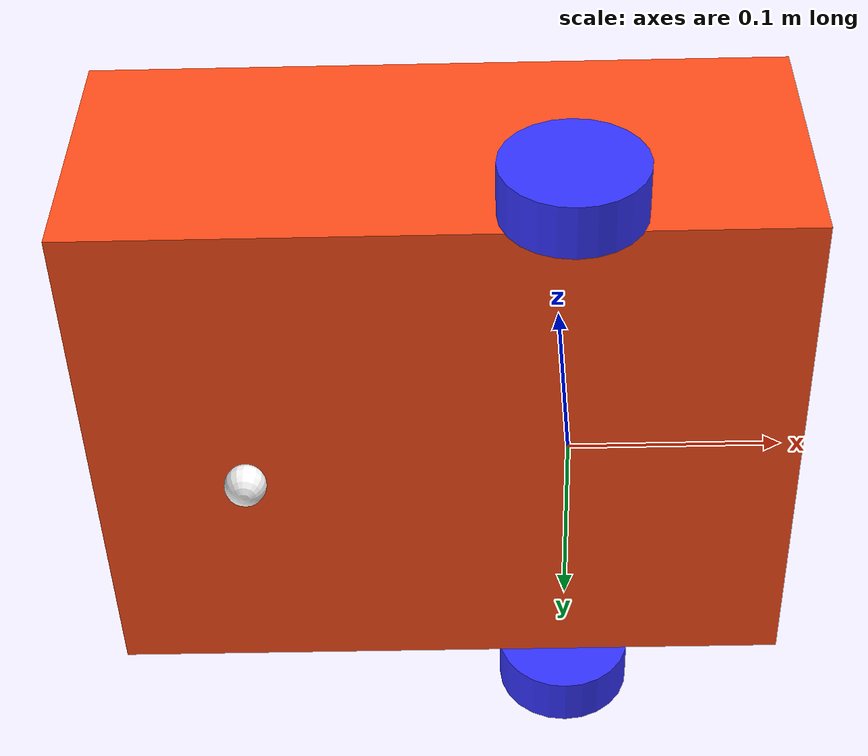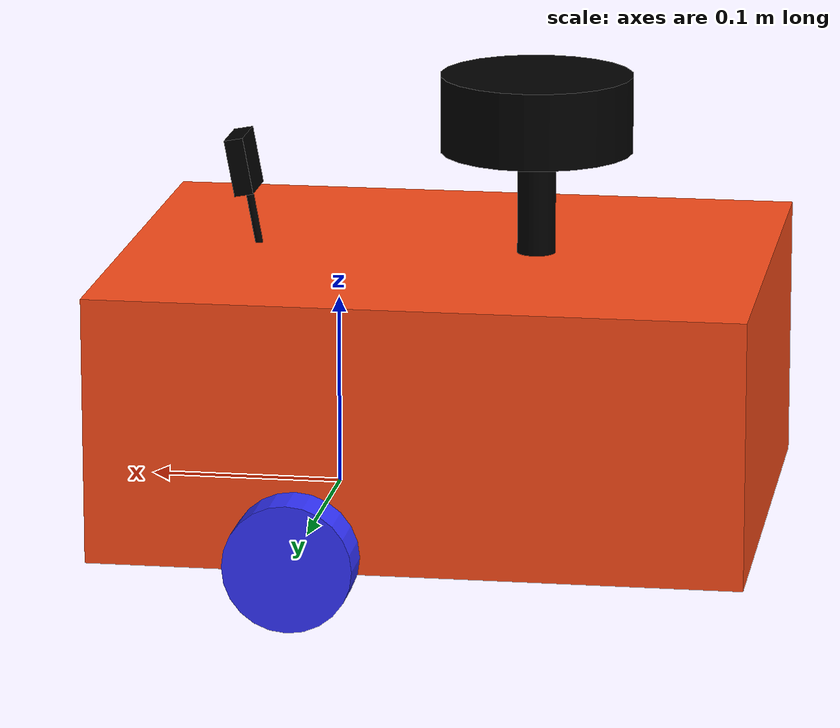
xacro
<?xml version="1.0"?>
<robot xmlns:xacro="http://www.ros.org/wiki/xacro"  name="robot">

    <xacro:arg name="sim_mode" default="false"/>

    <xacro:include filename="robot_core.xacro" />
    <xacro:include filename="gazebo_control.xacro"/>
    <xacro:include filename="inertial_macros.xacro"/>

    <xacro:include filename="lidar.xacro" />
    <xacro:include filename="camera.xacro" />
    <xacro:include filename="imu.xacro"/>

</robot>

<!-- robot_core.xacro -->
<robot xmlns:xacro="http://www.ros.org/wiki/xacro" >

    <xacro:include filename="inertial_macros.xacro"/>

    <xacro:property name="chassis_length" value="0.335"/>
    <xacro:property name="chassis_width" value="0.265"/>
    <xacro:property name="chassis_height" value="0.138"/>
    <xacro:property name="chassis_mass" value="1.0"/>
    <xacro:property name="wheel_radius" value="0.033"/>
    <xacro:property name="wheel_thickness" value="0.026"/>
    <xacro:property name="wheel_mass" value="0.05"/>
    <xacro:property name="wheel_offset_x" value="0.226"/>
    <xacro:property name="wheel_offset_y" value="0.1485"/>
    <xacro:property name="wheel_offset_z" value="0.01"/>
    <xacro:property name="caster_wheel_radius" value="0.01"/>
    <xacro:property name="caster_wheel_mass" value="0.01"/>
    <xacro:property name="caster_wheel_offset_x" value="0.075"/>
    <xacro:property name="caster_wheel_offset_z" value="${wheel_offset_z - wheel_radius + caster_wheel_radius}"/>

    <material name="white">
        <color rgba="1 1 1 1" />
    </material>

    <material name="orange">
        <color rgba="1 0.3 0.1 1"/>
    </material>

    <material name="blue">
        <color rgba="0.2 0.2 1 1"/>
    </material>

    <material name="black">
        <color rgba="0 0 0 1"/>
    </material>

    <material name="red">
        <color rgba="1 0 0 1"/>
    </material>

    <!-- BASE LINK -->

    <link name="base_link">
    </link>

    <link name="base_footprint">
    </link>

    <!-- BASE_FOOTPRINT LINK -->

    <joint name="base_footprint_joint" type="fixed">
        <parent link="base_link"/>
        <child link="base_footprint"/>
        <origin xyz="0 0 0.033" rpy="0 0 0"/>
    </joint>

    <!-- CHASSIS LINK -->

    <joint name="chassis_joint" type="fixed">
        <parent link="base_link"/>
        <child link="chassis"/>
        <origin xyz="${-wheel_offset_x} 0 ${-wheel_offset_z}"/>
    </joint>

    <link name="chassis">
        <visual>
            <origin xyz="${chassis_length/2} 0 ${chassis_height/2}"/>
            <geometry>
                <box size="${chassis_length} ${chassis_width} ${chassis_height}"/>
            </geometry>
            <material name="orange"/>
        </visual>
        <collision>
            <origin xyz="${chassis_length/2} 0 ${chassis_height/2}"/>
            <geometry>
                <box size="${chassis_length} ${chassis_width} ${chassis_height}"/>
            </geometry>
        </collision>
        <xacro:inertial_box mass="0.5" x="${chassis_length}" y="${chassis_width}" z="${chassis_height}">
            <origin xyz="${chassis_length/2} 0 ${chassis_height/2}" rpy="0 0 0"/>
        </xacro:inertial_box>
    </link>

    <gazebo reference="chassis">
        <material>Gazebo/Orange</material>
    </gazebo>

    <!-- LEFT WHEEL LINK -->

    <joint name="left_wheel_joint" type="continuous">
        <parent link="base_link"/>
        <child link="left_wheel"/>
        <origin xyz="0 ${wheel_offset_y} 0" rpy="1.570795 0 0" />
        <axis xyz="0 0 1"/>
    </joint>

    <link name="left_wheel">
        <visual>
            <geometry>
                <cylinder radius="${wheel_radius}" length="${wheel_thickness}"/>
            </geometry>
            <material name="blue"/>
        </visual>
        <collision>
            <geometry>
                <sphere radius="${wheel_radius}"/>
            </geometry>
        </collision>
        <xacro:inertial_cylinder mass="${wheel_mass}" length="${wheel_thickness}" radius="${wheel_radius}">
            <origin xyz="0 0 0" rpy="0 0 0"/>
        </xacro:inertial_cylinder>
    </link>

    <gazebo reference="left_wheel">
        <material>Gazebo/Blue</material>
        <visual>True</visual>
    </gazebo>

    <!-- RIGHT WHEEL LINK -->

    <joint name="right_wheel_joint" type="continuous">
        <parent link="base_link"/>
        <child link="right_wheel"/>
        <origin xyz="0 ${-wheel_offset_y} 0" rpy="1.570795 0 0" />
        <axis xyz="0 0 -1"/>
    </joint>

    <link name="right_wheel">
        <visual>
            <geometry>
                <cylinder radius="${wheel_radius}" length="${wheel_thickness}"/>
            </geometry>
            <material name="blue"/>
        </visual>
        <collision>
            <geometry>
                <sphere radius="${wheel_radius}"/>
            </geometry>
        </collision>
        <xacro:inertial_cylinder mass="${wheel_mass}" length="${wheel_thickness}" radius="${wheel_radius}">
            <origin xyz="0 0 0" rpy="0 0 0"/>
        </xacro:inertial_cylinder>
    </link>

    <gazebo reference="right_wheel">
        <material>Gazebo/Blue</material>
        <visual>True</visual>

    </gazebo>

    <!-- CASTER WHEEL LINK -->

    <joint name="caster_wheel_joint" type="fixed">
        <parent link="chassis"/>
        <child link="caster_wheel"/>
        <origin xyz="${caster_wheel_offset_x} 0 ${caster_wheel_offset_z}"/>
    </joint>

    <link name="caster_wheel">
        <visual>
            <geometry>
                <sphere radius="${caster_wheel_radius}"/>
            </geometry>
            <material name="white"/>
        </visual>
        <collision>
            <geometry>
                <sphere radius="${caster_wheel_radius}"/>
            </geometry>
        </collision>
        <xacro:inertial_sphere mass="${caster_wheel_mass}" radius="${caster_wheel_radius}">
            <origin xyz="0 0 0" rpy="0 0 0"/>
        </xacro:inertial_sphere>
    </link>

    <gazebo reference="caster_wheel">
        <material>Gazebo/White</material>
        <mu1 value="0.001"/>
        <mu2 value="0.001"/>
    </gazebo>

</robot>

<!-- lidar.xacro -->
<robot xmlns:xacro="http://www.ros.org/wiki/xacro" >

    <joint name="laser_joint" type="fixed">
        <parent link="chassis"/>
        <child link="laser_frame"/>
        <origin xyz="0.122 0 0.212" rpy="0 0 0"/>
    </joint>

    <link name="laser_frame">
        <visual>
            <geometry>
                <cylinder radius="0.05" length="0.04"/>
            </geometry>
            <material name="black"/>
        </visual>
        <visual>
            <origin xyz="0 0 -0.05"/>
            <geometry>
                <cylinder radius="0.01" length="0.1"/>
            </geometry>
            <material name="black"/>
        </visual>
        <collision>
            <geometry>
                <cylinder radius="0.05" length="0.04"/>
            </geometry>
        </collision>
        <xacro:inertial_cylinder mass="0.1" length="0.04" radius="0.05">
            <origin xyz="0 0 0" rpy="0 0 0"/>
        </xacro:inertial_cylinder>
    </link>

    <gazebo reference="laser_frame">
        <material>Gazebo/Black</material>

        <sensor name="laser" type="ray">
            <pose> 0 0 0 0 0 0 </pose>
            <visualize>true</visualize>

            <update_rate>10</update_rate>
            <ray>
                <scan>
                    <horizontal>
                        <samples>360</samples>
                        <min_angle>-3.14</min_angle>
                        <max_angle>3.14</max_angle>
                    </horizontal>
                </scan>
                <range>
                    <min>0.3</min>
                    <max>12</max>
                </range>
            </ray>
            <plugin name="laser_controller" filename="libgazebo_ros_ray_sensor.so">
                <ros>
                    <argument>~/out:=scan</argument>
                </ros>
                <output_type>sensor_msgs/LaserScan</output_type>
                <frame_name>laser_frame</frame_name>
            </plugin>
        </sensor>
    </gazebo>

</robot>

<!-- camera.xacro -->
<robot xmlns:xacro="http://www.ros.org/wiki/xacro" >

    <joint name="camera_joint" type="fixed">
        <parent link="chassis"/>
        <child link="camera_link"/>
        <origin xyz="0.276 0 0.181" rpy="0 0.18 0"/>
    </joint>

    <link name="camera_link">
        <visual>
            <geometry>
                <box size="0.010 0.03 0.03"/>
            </geometry>
            <material name="black"/>
        </visual>
        <visual>
            <origin xyz="0 0 -0.05"/>
            <geometry>
                <cylinder radius="0.002" length="0.1"/>
            </geometry>
            <material name="black"/>
        </visual>
    </link>

    <joint name="camera_optical_joint" type="fixed">
        <parent link="camera_link"/>
        <child link="camera_link_optical"/>
        <origin xyz="0 0 0" rpy="${-pi/2} 0 ${-pi/2}"/>
    </joint>

    <link name="camera_link_optical"></link>

    <gazebo reference="camera_link">
    <sensor type="camera" name="camera1">
      <update_rate>30.0</update_rate>
      <camera name="head">
        <horizontal_fov>1.3962634</horizontal_fov>
        <image>
          <width>800</width>
          <height>800</height>
          <format>R8G8B8</format>
        </image>
        <clip>
          <near>0.02</near>
          <far>300</far>
        </clip>
        <noise>
          <type>gaussian</type>
          <!-- Noise is sampled independently per pixel on each frame.
               That pixel's noise value is added to each of its color
               channels, which at that point lie in the range [0,1]. -->
          <mean>0.0</mean>
          <stddev>0.007</stddev>
        </noise>
      </camera>
      <plugin name="camera_controller" filename="libgazebo_ros_camera.so">
        <alwaysOn>true</alwaysOn>
        <updateRate>0.0</updateRate>
        <cameraName>rrbot/camera1</cameraName>
        <imageTopicName>image_raw</imageTopicName>
        <cameraInfoTopicName>camera_info</cameraInfoTopicName>
        <frameName>camera_link</frameName>
        <hackBaseline>0.07</hackBaseline>
        <distortionK1>0.0</distortionK1>
        <distortionK2>0.0</distortionK2>
        <distortionK3>0.0</distortionK3>
        <distortionT1>0.0</distortionT1>
        <distortionT2>0.0</distortionT2>
      </plugin>
    </sensor>
  </gazebo>

</robot>

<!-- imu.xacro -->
<robot xmlns:xacro="http://www.ros.org/wiki/xacro" name="robot_name">

    <link name="imu_link">
        <visual>
          <geometry>
            <box size="0.01 0.01 0.01"/>
          </geometry>
        </visual>

        <collision>
          <geometry>
            <box size="0.01 0.01 0.01"/>
          </geometry>
        </collision>

      </link>

      <joint name="imu_joint" type="fixed">
        <parent link="base_link"/>
        <child link="imu_link"/>
        <origin xyz="0 0 0.03"/>
      </joint>

       <gazebo reference="imu_link">
        <sensor name="imu_sensor" type="imu">
         <plugin filename="libgazebo_ros_imu_sensor.so" name="imu_plugin">
            <ros>
              <namespace>/demo</namespace>
              <remapping>~/out:=imu</remapping>
            </ros>
            <initial_orientation_as_reference>false</initial_orientation_as_reference>
          </plugin>
          <always_on>true</always_on>
          <update_rate>100</update_rate>
          <visualize>true</visualize>
          <imu>
            <angular_velocity>
              <x>
                <noise type="gaussian">
                  <mean>0.0</mean>
                  <stddev>2e-4</stddev>
                  <bias_mean>0.0000075</bias_mean>
                  <bias_stddev>0.0000008</bias_stddev>
                </noise>
              </x>
              <y>
                <noise type="gaussian">
                  <mean>0.0</mean>
                  <stddev>2e-4</stddev>
                  <bias_mean>0.0000075</bias_mean>
                  <bias_stddev>0.0000008</bias_stddev>
                </noise>
              </y>
              <z>
                <noise type="gaussian">
                  <mean>0.0</mean>
                  <stddev>2e-4</stddev>
                  <bias_mean>0.0000075</bias_mean>
                  <bias_stddev>0.0000008</bias_stddev>
                </noise>
              </z>
            </angular_velocity>
            <linear_acceleration>
              <x>
                <noise type="gaussian">
                  <mean>0.0</mean>
                  <stddev>1.7e-2</stddev>
                  <bias_mean>0.1</bias_mean>
                  <bias_stddev>0.001</bias_stddev>
                </noise>
              </x>
              <y>
                <noise type="gaussian">
                  <mean>0.0</mean>
                  <stddev>1.7e-2</stddev>
                  <bias_mean>0.1</bias_mean>
                  <bias_stddev>0.001</bias_stddev>
                </noise>
              </y>
              <z>
                <noise type="gaussian">
                  <mean>0.0</mean>
                  <stddev>1.7e-2</stddev>
                  <bias_mean>0.1</bias_mean>
                  <bias_stddev>0.001</bias_stddev>
                </noise>
              </z>
            </linear_acceleration>
          </imu>
        </sensor>
      </gazebo>

</robot>
